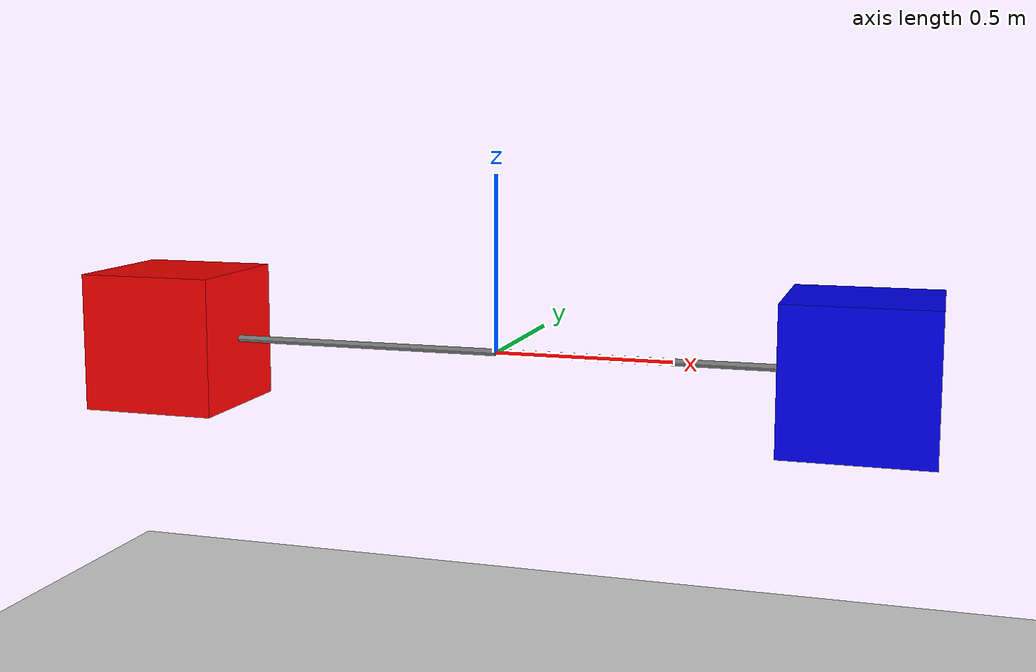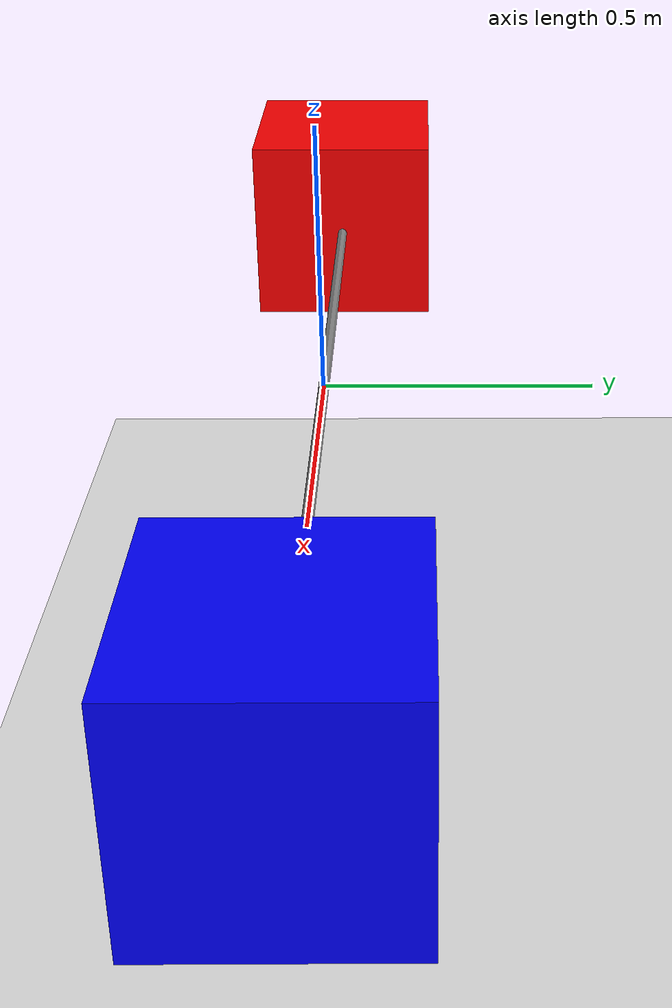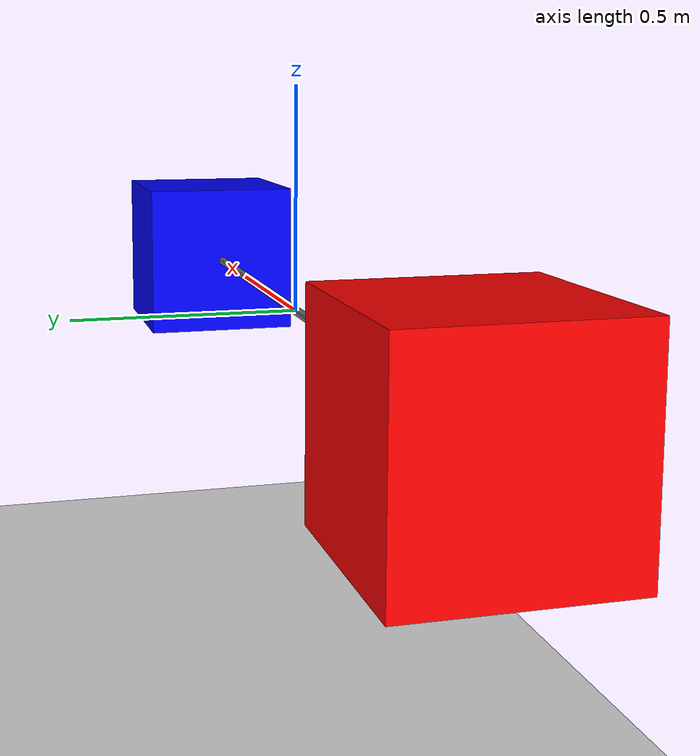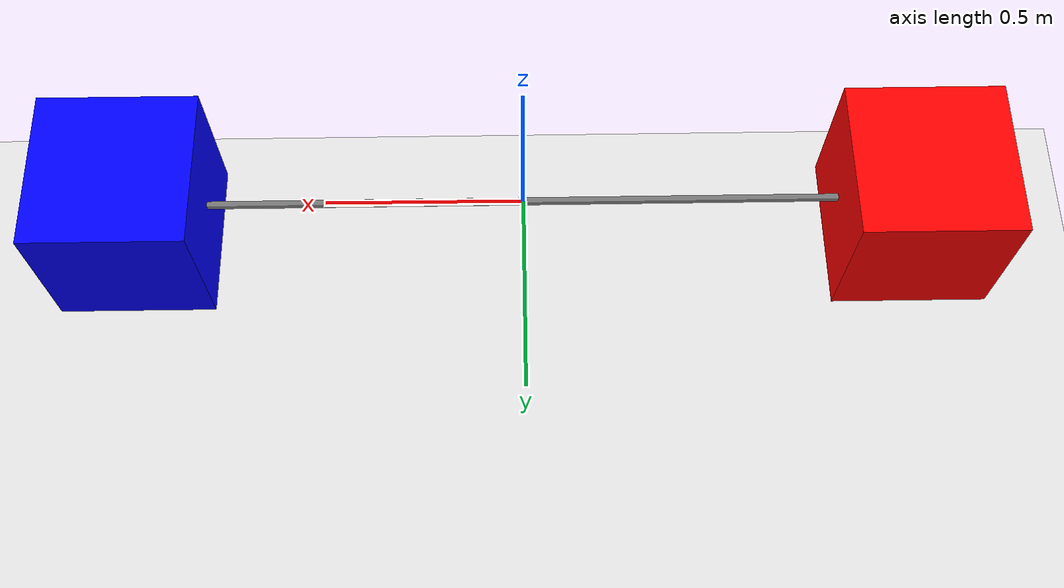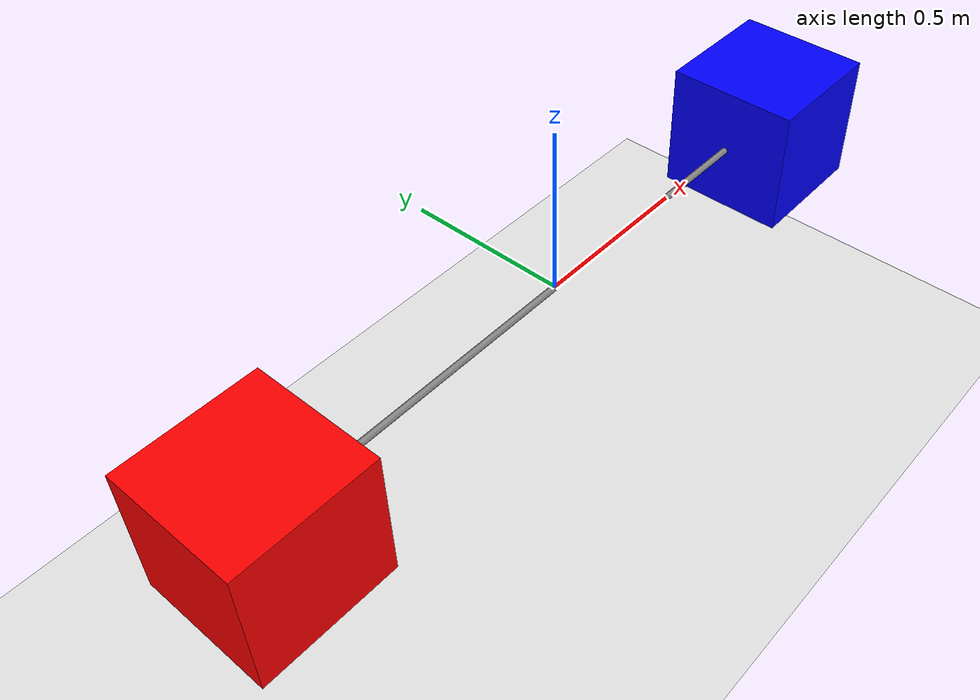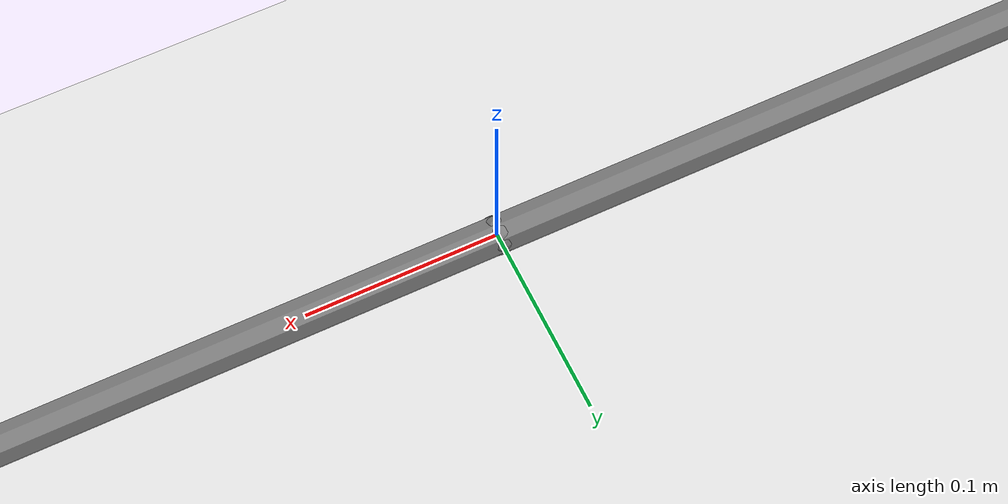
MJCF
<mujoco>
  <option gravity="0 0 -9.81"/>
  <worldbody>
    <body name="object_4" pos="0 0 -1">
      <geom type="plane" size="20 20 0.1" rgba="0.9 0.9 0.9 1"/>
    </body>
    <body name="object_3" pos="0 0 0">
      <site name="anchor_site" pos="0 0 0" size="0.01"/>
    </body>
    <body name="object_1" pos="-1 0 0">
      <geom type="box" size="0.2 0.2 0.2" mass="2" rgba="1 0 0 1"/>
      <joint name="object_1_joint" type="slide" axis="1 0 0"/>
      <site name="block_1_site" pos="0 0 0" size="0.01"/>
    </body>
    <body name="object_2" pos="1 0 0">
      <geom type="box" size="0.2 0.2 0.2" mass="1" rgba="0 0 1 1"/>
      <joint name="object_2_joint" type="slide" axis="1 0 0"/>
      <site name="block_2_site" pos="0 0 0" size="0.01"/>
    </body>
    <body name="object_5" pos="0 0 1"/>
  </worldbody>
  <tendon>
    <spatial name="spring1" width="0.01" stiffness="50">
      <site site="anchor_site"/>
      <site site="block_1_site"/>
    </spatial>
    <spatial name="spring2" width="0.01" stiffness="100">
      <site site="anchor_site"/>
      <site site="block_2_site"/>
    </spatial>
  </tendon>
</mujoco>
